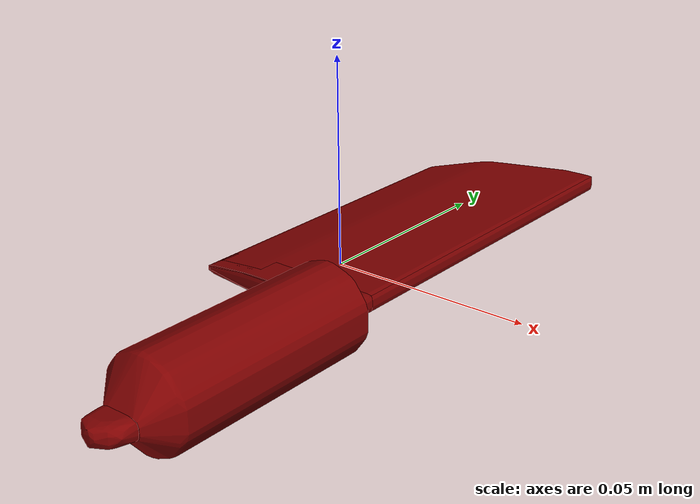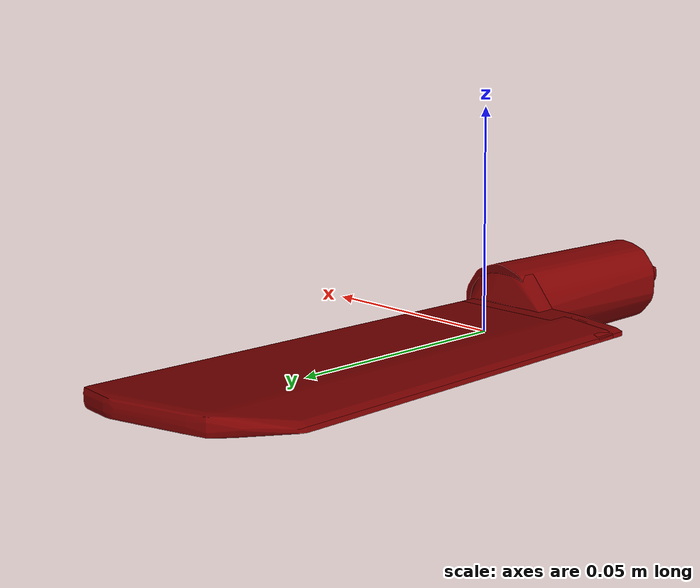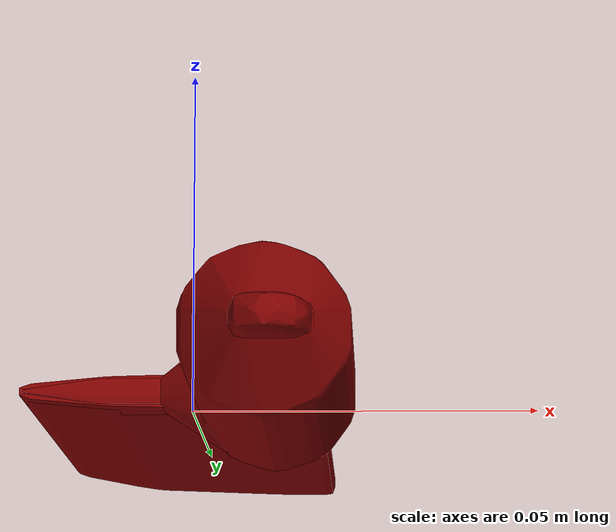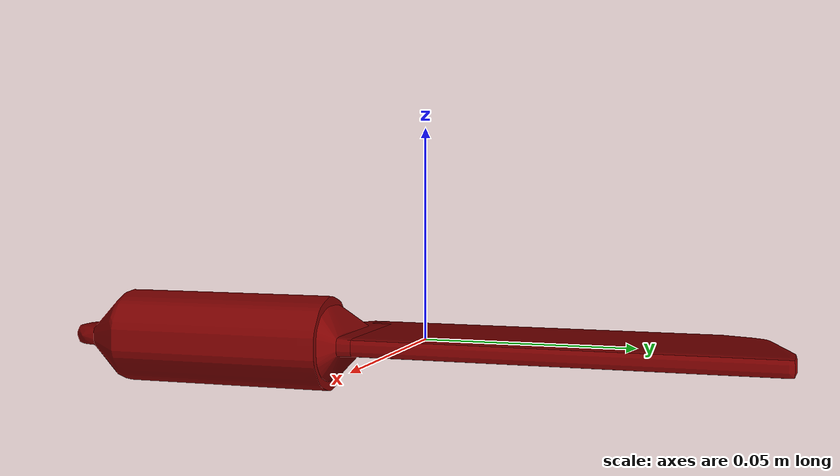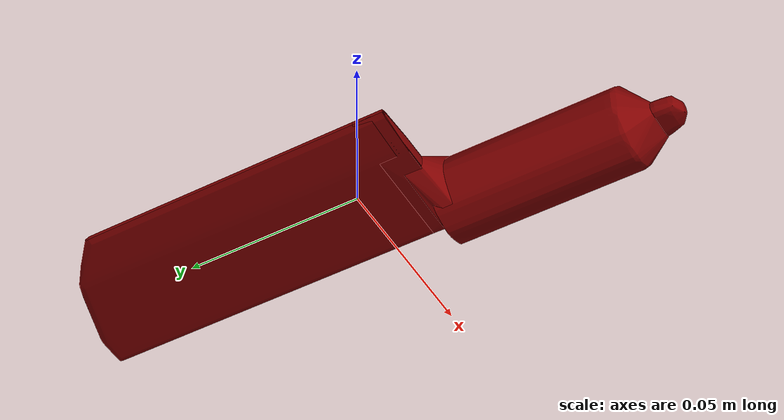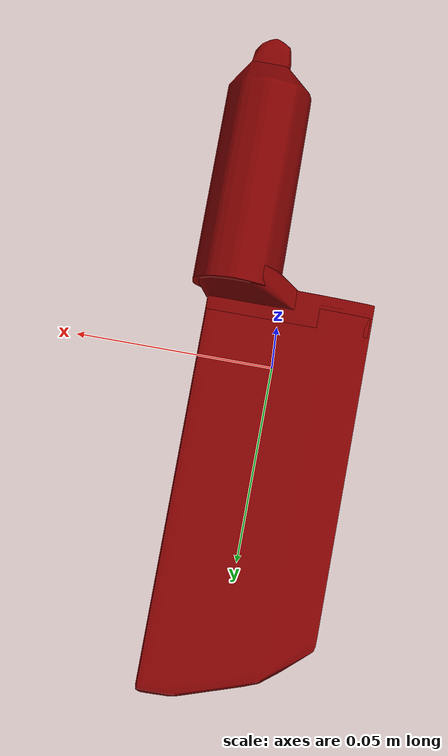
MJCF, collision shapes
<?xml version='1.0' encoding='utf-8'?>
<mujoco model="kitchen_knife_5">
  <asset>
    <mesh file="visual/model_normalized_0.obj" name="model_normalized_0_vis" scale="0.16999999999999998 0.16999999999999998 0.16999999999999998" refquat="0.5000000000000006 0.5000000000000007 0.5000000000000006 0.5000000000000007" />
    <texture type="2d" name="image0" file="visual/image0.png" />
    <material name="lambert2SG.001" texture="image0" specular="0.5" shininess="0.25" />
    <mesh file="collision/collision_mesh_collision_0.obj" name="knife_collision_mesh_0" scale="0.16999999999999998 0.16999999999999998 0.16999999999999998" refquat="0.5000000000000006 0.5000000000000007 0.5000000000000006 0.5000000000000007" />
    <mesh file="collision/collision_mesh_collision_1.obj" name="knife_collision_mesh_1" scale="0.16999999999999998 0.16999999999999998 0.16999999999999998" refquat="0.5000000000000006 0.5000000000000007 0.5000000000000006 0.5000000000000007" />
    <mesh file="collision/collision_mesh_collision_2.obj" name="knife_collision_mesh_2" scale="0.16999999999999998 0.16999999999999998 0.16999999999999998" refquat="0.5000000000000006 0.5000000000000007 0.5000000000000006 0.5000000000000007" />
    <mesh file="collision/collision_mesh_collision_3.obj" name="knife_collision_mesh_3" scale="0.16999999999999998 0.16999999999999998 0.16999999999999998" refquat="0.5000000000000006 0.5000000000000007 0.5000000000000006 0.5000000000000007" />
    <mesh file="collision/collision_mesh_collision_4.obj" name="knife_collision_mesh_4" scale="0.16999999999999998 0.16999999999999998 0.16999999999999998" refquat="0.5000000000000006 0.5000000000000007 0.5000000000000006 0.5000000000000007" />
    <mesh file="collision/collision_mesh_collision_5.obj" name="knife_collision_mesh_5" scale="0.16999999999999998 0.16999999999999998 0.16999999999999998" refquat="0.5000000000000006 0.5000000000000007 0.5000000000000006 0.5000000000000007" />
    </asset>
  <default>
    <default class="region">
      <geom group="1" conaffinity="0" contype="0" rgba="0 1 0 0" />
      </default>
    <default class="collision">
      <geom group="0" rgba="0.5 0 0 0.5" density="1000.0" />
      </default>
    </default>
  <worldbody>
    <body>
      <body name="object">
        <geom solimp="0.998 0.998 0.001" solref="0.001 1" density="100" friction="0.95 0.3 0.1" type="mesh" mesh="model_normalized_0_vis" conaffinity="0" contype="0" group="1" material="lambert2SG.001" />
        <geom class="region" name="reg_bbox" type="box" pos="-8.141706615838462e-10 0.0005745720545011298 9.869629245090952e-06" size="0.02284877050976565 0.08499999603265507 0.010231190331502413" />
        <geom mesh="knife_collision_mesh_0" type="mesh" class="collision" />
        <geom mesh="knife_collision_mesh_1" type="mesh" class="collision" />
        <geom mesh="knife_collision_mesh_2" type="mesh" class="collision" />
        <geom mesh="knife_collision_mesh_3" type="mesh" class="collision" />
        <geom mesh="knife_collision_mesh_4" type="mesh" class="collision" />
        <geom mesh="knife_collision_mesh_5" type="mesh" class="collision" />
        </body>
      <site rgba="0 0 0 0" size="0.005" pos="0 0 -0.010221321" name="bottom_site" /><site rgba="0 0 0 0" size="0.005" pos="0 0 0.01024106" name="top_site" /><site rgba="0 0 0 0" size="0.005" pos="0.085574568 0.085574568 0" name="horizontal_radius_site" /></body>
    </worldbody>
  </mujoco>
